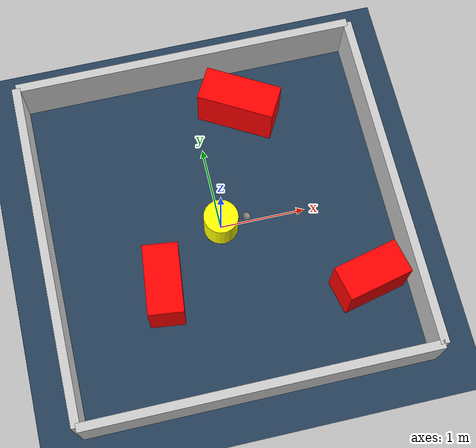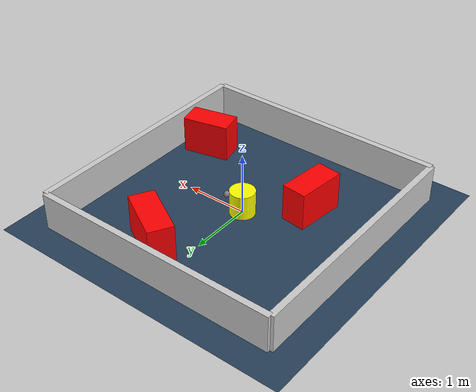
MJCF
<?xml version="1.0" ?>
<mujoco model="generated_environment">
  <option timestep="0.01" integrator="RK4" cone="elliptic"/>
  <default>
    <geom density="1"/>
  </default>
  <asset>
    <texture builtin="gradient" height="3072" rgb1="0.3 0.5 0.7" rgb2="0 0 0" type="skybox" width="512"/>
    <texture builtin="checker" height="300" mark="edge" markrgb="0.8 0.8 0.8" name="groundplane" rgb1="0.2 0.3 0.4" rgb2="0.1 0.2 0.3" type="2d" width="300"/>
    <material name="groundplane" reflectance="0.2" texrepeat="5 5" texture="groundplane" texuniform="true"/>
    <material name="robot" rgba="0.0 1.0 0.0 1"/>
  </asset>
  <worldbody>
    <light dir="0 0 -1" directional="true" pos="0 0 1.5"/>
    <geom condim="4" friction="1.0 0.005 0.001" material="groundplane" name="floor" size="0 0 0.05" type="plane"/>
    <body name="walls">
      <geom name="wall_1" condim="4" pos="-2.0 0.0 0.3" rgba="0.800000011920929 0.800000011920929 0.800000011920929 1.0" size="0.05 2.0 0.3" type="box"/>
      <geom name="wall_2" condim="4" pos="2.0 0.0 0.3" rgba="0.800000011920929 0.800000011920929 0.800000011920929 1.0" size="0.05 2.0 0.3" type="box"/>
      <geom name="wall_3" condim="4" pos="0.0 -2.0 0.3" rgba="0.800000011920929 0.800000011920929 0.800000011920929 1.0" size="2.0 0.05 0.3" type="box"/>
      <geom name="wall_4" condim="4" pos="0.0 2.0 0.3" rgba="0.800000011920929 0.800000011920929 0.800000011920929 1.0" size="2.0 0.05 0.3" type="box"/>
    </body>
    <body name="robot">
      <joint name="joint_x" type="slide" pos="0 0 0" axis="1 0 0"/>
      <joint name="joint_y" type="slide" pos="0 0 0" axis="0 1 0"/>
      <geom name="robot" type="sphere" pos="0.3 0.0 0.2" size="0.05" mass="5." friction="1.0 0.005 0.0001" condim="4" rgba="0.5 0.5 0.5 1.0"/>
      <site name="sensor_ball"/>
    </body>
    <body name="obstacle_movable_1">
      <geom name="obstacle_movable_1" condim="4" pos="0.0 0.0 0.2" euler="0 0 0.0" friction="1.0 0.005 0.001" rgba="1.0 1.0 0.0 1.0" size="0.2 0.2 0.0" type="cylinder" mass="0.1"/>
      <joint type="free"/>
    </body>
    <body name="obstacle_2_static">
      <geom name="obstacle_2_static" condim="4" pos="0.5342995801106651 1.3789073498513849 0.3" euler="0 0 150.3841855900574" friction="1.0 0.005 0.001" rgba="1 0 0 1" size="0.4513607886730967 0.2 0.3" type="box"/>
    </body>
    <body name="obstacle_3_static">
      <geom name="obstacle_3_static" condim="4" pos="-0.793611809922052 -0.6232303781201525 0.3" euler="0 0 83.40315734899082" friction="1.0 0.005 0.001" rgba="1 0 0 1" size="0.398165607582358 0.2 0.3" type="box"/>
    </body>
    <body name="obstacle_4_static">
      <geom name="obstacle_4_static" condim="4" pos="1.4722818327560832 -1.0374526151443026 0.3" euler="0 0 193.23783879310932" friction="1.0 0.005 0.001" rgba="1 0 0 1" size="0.3782838960964428 0.2 0.3" type="box"/>
    </body>
  </worldbody>
  <actuator>
    <motor name="actuator_x" joint="joint_x" gear="1" ctrlrange="-1 1"/>
    <motor name="actuator_y" joint="joint_y" gear="1" ctrlrange="-1 1"/>
  </actuator>
</mujoco>
